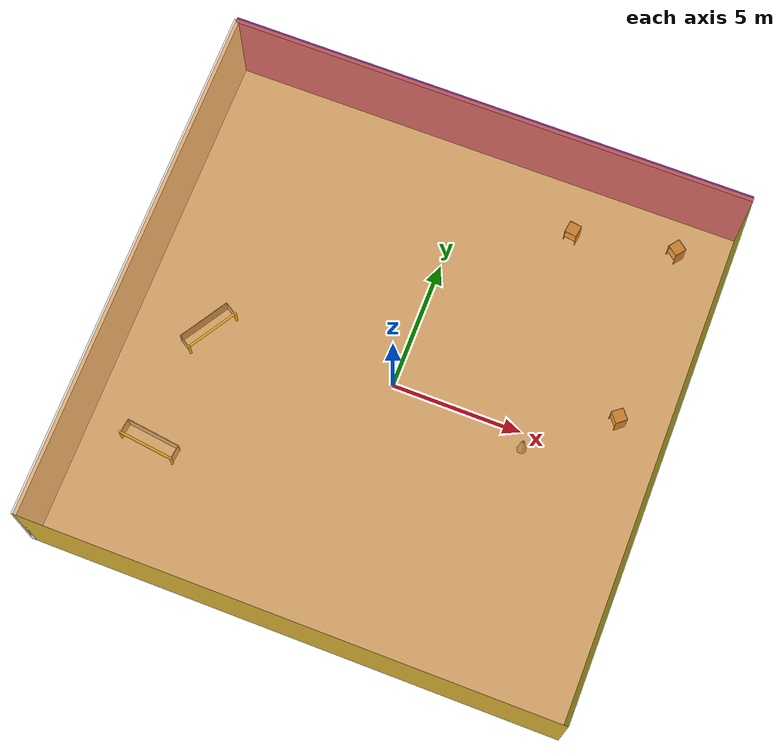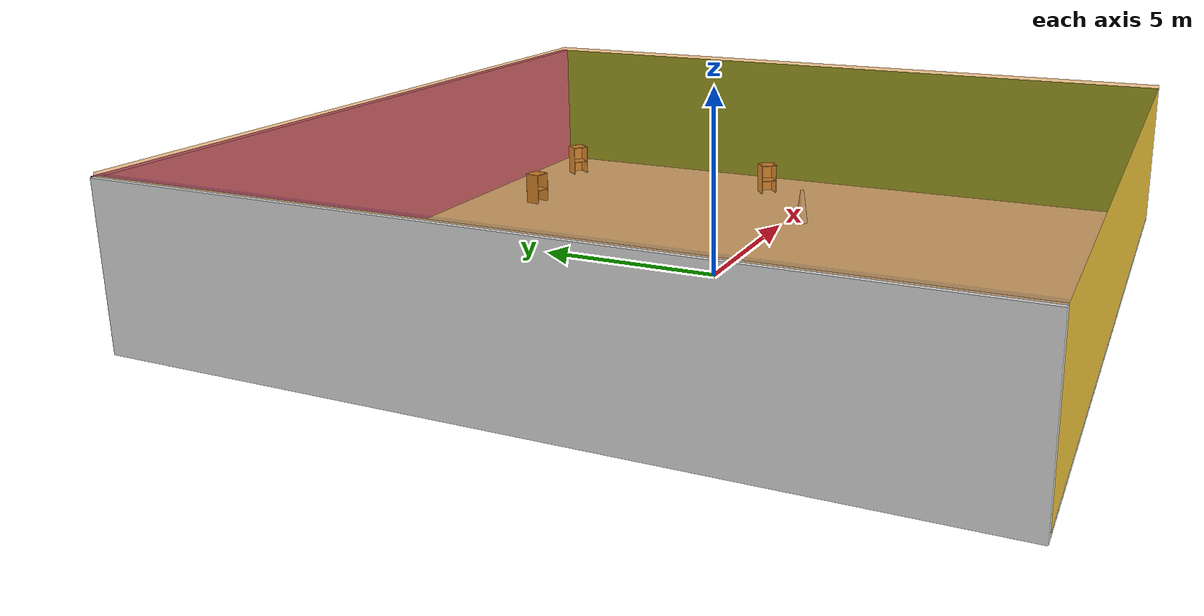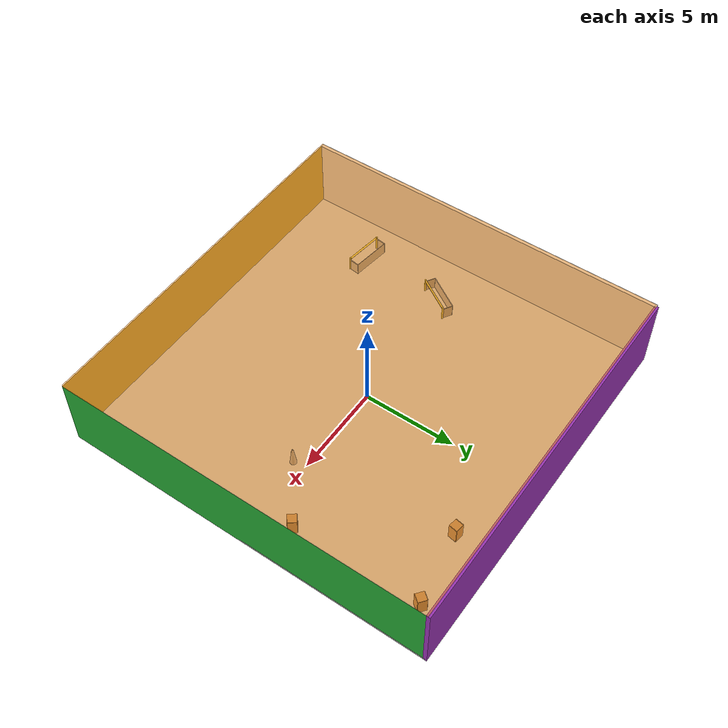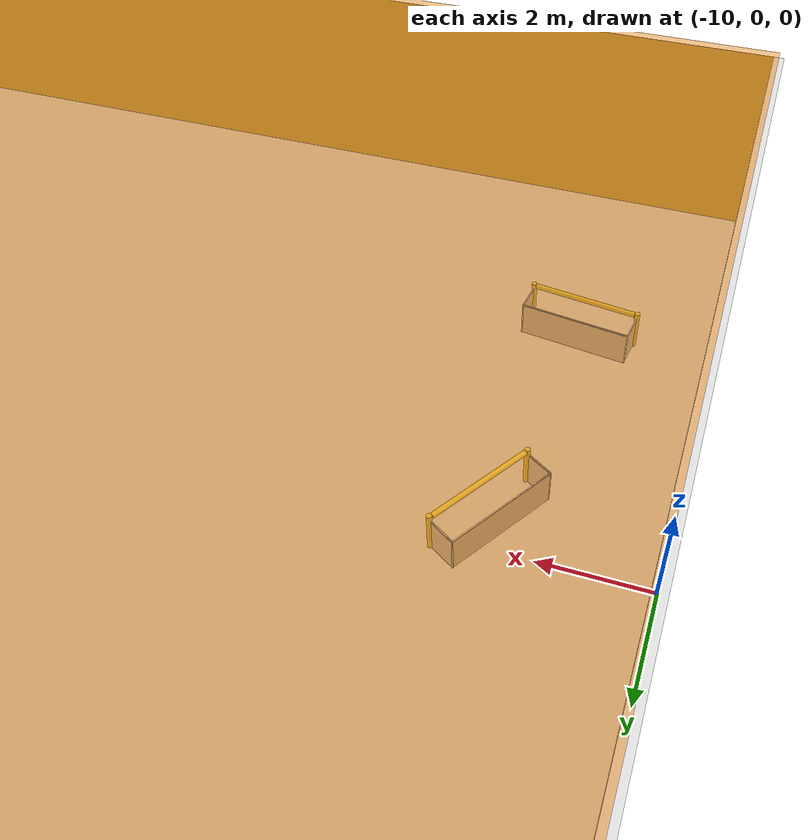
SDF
<sdf version="1.4">
 <world name="default">
  <physics type="ode">
   <max_step_size>0.001</max_step_size>
   <real_time_factor>1</real_time_factor>
   <real_time_update_rate>1000</real_time_update_rate>
   <gravity>0 0 -9.8</gravity>
  </physics>
  <scene><ambient>0.4 0.4 0.4 1</ambient><background>0.7 0.7 0.7 1</background><shadows>1</shadows></scene>
  <model name="Surrounding">
   <static>1</static>
   <link name="Ceiling">
    <collision name="Ceiling_Collision"><geometry><box><size>20 20 0.1</size></box></geometry></collision>
    <visual name="Ceiling_Visual">
     <geometry><box><size>20 20 0.1</size></box></geometry>
     <material>
      <script>
       <uri>file://media/materials/scripts/gazebo.material</uri>
       <name>Gazebo/OrangeTransparent</name>
      </script>
     </material>
    </visual>
    <pose>0 0 4.05 0 0 0</pose>
   </link>
   <link name="Wall_South">
    <collision name="Wall_South_Collision">
     <geometry><box><size>20 0 4</size></box></geometry>
     <pose>0 0 2 0 -0 0</pose>
    </collision>
    <visual name="Wall_South_Visual">
     <pose>0 0 2 0 -0 0</pose>
     <geometry><box><size>20 0 4</size></box></geometry>
     <material>
      <script><uri>file://media/materials/scripts/gazebo.material</uri><name>Gazebo/Gold</name></script>
     </material>
    </visual>
    <velocity_decay><linear>0</linear><angular>0</angular></velocity_decay>
    <pose>0 -10 0 0 -0 0</pose>
   </link>
   <link name="Wall_East">
    <collision name="Wall_21_Collision">
     <geometry><box><size>20 0 4</size></box></geometry>
     <pose>0 0 2 0 -0 0</pose>
    </collision>
    <visual name="Wall_21_Visual">
     <pose>0 0 2 0 -0 0</pose>
     <geometry><box><size>20 0 4</size></box></geometry>
     <material>
      <script><uri>file://media/materials/scripts/gazebo.material</uri><name>Gazebo/GreenGlow</name></script>
     </material>
    </visual>
    <velocity_decay><linear>0</linear><angular>0</angular></velocity_decay>
    <pose>10 0 0 0 -0 1.5708</pose>
   </link>
   <link name="Wall_North">
    <collision name="Wall_22_Collision">
     <geometry><box><size>20 0.2 4</size></box></geometry>
     <pose>0 0 2 0 -0 0</pose>
    </collision>
    <visual name="Wall_22_Visual">
     <pose>0 0 2 0 -0 0</pose>
     <geometry><box><size>20 0.2 4</size></box></geometry>
     <material>
      <script><uri>file://media/materials/scripts/gazebo.material</uri><name>Gazebo/PurpleGlow</name></script>
     </material>
    </visual>
    <velocity_decay><linear>0</linear><angular>0</angular></velocity_decay>
    <pose>0 10 0 0 -0 0</pose>
   </link>
   <link name="Wall_West">
    <collision name="Wall_23_Collision">
     <geometry><box><size>20 0.2 4</size></box></geometry>
     <pose>0 0 2 0 -0 0</pose>
    </collision>
    <visual name="Wall_23_Visual">
     <pose>0 0 2 0 -0 0</pose>
     <geometry><box><size>20 0.2 4</size></box></geometry>
     <material>
      <script><uri>file://media/materials/scripts/gazebo.material</uri><name>Gazebo/White</name></script>
     </material>
    </visual>
    <velocity_decay><linear>0</linear><angular>0</angular></velocity_decay>
    <pose>-10 0 0 0 0 -1.5708</pose>
   </link>
   <link name="Ground_link">
    <collision name="collision">
     <pose>0 0 .05 0 -0 0</pose>
     <geometry><box><size>20 20 0.1</size></box></geometry>
    </collision>
    <visual name="visual">
     <pose>0 0 .05 0 -0 0</pose>
     <geometry><box><size>20 20 0.1</size></box></geometry>
     <material>
      <script><uri>file://media/materials/scripts/gazebo.material</uri><name>Gazebo/CeilingTiled</name></script>
     </material>
    </visual>
   </link>
   <static>1</static>
  </model>
  <spherical_coordinates>
   <surface_model>EARTH_WGS84</surface_model>
   <latitude_deg>0</latitude_deg>
   <longitude_deg>0</longitude_deg>
   <elevation>0</elevation>
   <heading_deg>0</heading_deg>
  </spherical_coordinates>
  <light name="lightball_0" type="diffuse">
   <diffuse>0.8 0.8 0.8 1</diffuse>
   <specular>0.2 0.2 0.2 1</specular>
   <attenuation>
    <range>100</range>
    <constant>0.7</constant>
    <linear>0.01</linear>
    <quadratic>0.001</quadratic>
   </attenuation>
   <direction>-0.5 0.1 -0.9</direction>
   <pose>-0.971881900913 -5.03999347136 2.68511583324 0 0 0</pose>
  </light>
  <light name="lightball_1" type="diffuse">
   <diffuse>0.8 0.8 0.8 1</diffuse>
   <specular>0.2 0.2 0.2 1</specular>
   <attenuation>
    <range>100</range>
    <constant>0.7</constant>
    <linear>0.01</linear>
    <quadratic>0.001</quadratic>
   </attenuation>
   <direction>-0.5 0.1 -0.9</direction>
   <pose>2.6576067477 5.5924045881 2.17132632998 0 0 0</pose>
  </light>
  <light name="lightball_2" type="diffuse">
   <diffuse>0.8 0.8 0.8 1</diffuse>
   <specular>0.2 0.2 0.2 1</specular>
   <attenuation>
    <range>100</range>
    <constant>0.7</constant>
    <linear>0.01</linear>
    <quadratic>0.001</quadratic>
   </attenuation>
   <direction>-0.5 0.1 -0.9</direction>
   <pose>2.77354670179 2.02635423821 0.627602387681 0 0 0</pose>
  </light>
  <light name="lightball_3" type="diffuse">
   <diffuse>0.8 0.8 0.8 1</diffuse>
   <specular>0.2 0.2 0.2 1</specular>
   <attenuation>
    <range>100</range>
    <constant>0.7</constant>
    <linear>0.01</linear>
    <quadratic>0.001</quadratic>
   </attenuation>
   <direction>-0.5 0.1 -0.9</direction>
   <pose>-1.39184254077 -5.06607758545 2.73511131327 0 0 0</pose>
  </light>
  <light name="lightball_4" type="diffuse">
   <diffuse>0.8 0.8 0.8 1</diffuse>
   <specular>0.2 0.2 0.2 1</specular>
   <attenuation>
    <range>100</range>
    <constant>0.7</constant>
    <linear>0.01</linear>
    <quadratic>0.001</quadratic>
   </attenuation>
   <direction>-0.5 0.1 -0.9</direction>
   <pose>9.19533148344 -3.82746874817 1.94579705425 0 0 0</pose>
  </light>
  <light name="lightball_5" type="diffuse">
   <diffuse>0.8 0.8 0.8 1</diffuse>
   <specular>0.2 0.2 0.2 1</specular>
   <attenuation>
    <range>100</range>
    <constant>0.7</constant>
    <linear>0.01</linear>
    <quadratic>0.001</quadratic>
   </attenuation>
   <direction>-0.5 0.1 -0.9</direction>
   <pose>8.36536980782 -9.48534313114 1.61509472549 0 0 0</pose>
  </light>
  <light name="lightball_6" type="diffuse">
   <diffuse>0.8 0.8 0.8 1</diffuse>
   <specular>0.2 0.2 0.2 1</specular>
   <attenuation>
    <range>100</range>
    <constant>0.7</constant>
    <linear>0.01</linear>
    <quadratic>0.001</quadratic>
   </attenuation>
   <direction>-0.5 0.1 -0.9</direction>
   <pose>1.57473999129 5.74411624988 0.560582084568 0 0 0</pose>
  </light>
  <light name="lightball_7" type="diffuse">
   <diffuse>0.8 0.8 0.8 1</diffuse>
   <specular>0.2 0.2 0.2 1</specular>
   <attenuation>
    <range>100</range>
    <constant>0.7</constant>
    <linear>0.01</linear>
    <quadratic>0.001</quadratic>
   </attenuation>
   <direction>-0.5 0.1 -0.9</direction>
   <pose>7.85248026893 -5.23346286447 3.87449298741 0 0 0</pose>
  </light>
  <light name="lightball_8" type="diffuse">
   <diffuse>0.8 0.8 0.8 1</diffuse>
   <specular>0.2 0.2 0.2 1</specular>
   <attenuation>
    <range>100</range>
    <constant>0.7</constant>
    <linear>0.01</linear>
    <quadratic>0.001</quadratic>
   </attenuation>
   <direction>-0.5 0.1 -0.9</direction>
   <pose>9.76749112191 -8.41317783552 2.05782780626 0 0 0</pose>
  </light>
  <light name="lightball_9" type="diffuse">
   <diffuse>0.8 0.8 0.8 1</diffuse>
   <specular>0.2 0.2 0.2 1</specular>
   <attenuation>
    <range>100</range>
    <constant>0.7</constant>
    <linear>0.01</linear>
    <quadratic>0.001</quadratic>
   </attenuation>
   <direction>-0.5 0.1 -0.9</direction>
   <pose>-9.7639243297 3.41290561233 1.7102360478 0 0 0</pose>
  </light>
  <include>
   <uri>model://robocup_3Dsim_goal</uri>
   <pose>-7.47778473885 -5.52361802015 0 0 0 1.44460344586</pose>
  </include>
  <include>
   <uri>model://robocup_3Dsim_goal</uri>
   <pose>-6.89174925489 -0.616965852944 0 0 0 2.58965102672</pose>
  </include>
  <include>
   <uri>model://construction_cone</uri>
   <pose>5.24474085972 -0.604165135028 0 0 0 2.55376416708</pose>
  </include>
  <include><uri>model://cabinet</uri><pose>4.20821600027 7.82673204298 0 0 0 1.41702466868</pose></include>
  <include><uri>model://cabinet</uri><pose>8.15956102425 1.58326379414 0 0 0 0.675532300678</pose></include>
  <include><uri>model://cabinet</uri><pose>8.07441984785 8.50265505884 0 0 0 0.91370140625</pose></include>
 </world>
</sdf>

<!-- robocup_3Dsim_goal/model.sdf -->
<sdf version="1.5">
  <model name="robocup_3d_goal">
    <static>true</static>
    <link name="left_post">
      <pose>0 1.05 0.45 0 0 0</pose>
      <collision name="collision">
        <geometry>
          <cylinder>
            <radius>0.05</radius>
            <length>0.9</length>
          </cylinder>
        </geometry>
      </collision>
      <visual name="visual">
        <geometry>
          <cylinder>
            <radius>0.05</radius>
            <length>0.9</length>
          </cylinder>
        </geometry>
        <material>
          <script>
            <uri>file://media/materials/scripts/gazebo.material</uri>
            <name>Gazebo/ZincYellow</name>
          </script>
        </material>
      </visual>
    </link>
    <link name="left_support_horiz_lower">
      <pose>0.30 1.05 0.01 0 0 0</pose>
      <collision name="collision">
        <geometry>
          <box>
            <size>0.50 0.02 0.02</size>
          </box>
        </geometry>
      </collision>
      <visual name="visual">
        <geometry>
          <box>
            <size>0.50 0.02 0.02</size>
          </box>
        </geometry>
        <material>
          <script>
            <uri>file://media/materials/scripts/gazebo.material</uri>
            <name>Gazebo/White</name>
          </script>
        </material>
      </visual>
    </link>
    <link name="left_support_horiz_upper">
      <pose>0.30 1.05 0.79 0 0 0</pose>
      <collision name="collision">
        <geometry>
          <box>
            <size>0.50 0.02 0.02</size>
          </box>
        </geometry>
      </collision>
      <visual name="visual">
        <geometry>
          <box>
            <size>0.50 0.02 0.02</size>
          </box>
        </geometry>
        <material>
          <script>
            <uri>file://media/materials/scripts/gazebo.material</uri>
            <name>Gazebo/White</name>
          </script>
        </material>
      </visual>
    </link>
    <link name="left_support_vertical">
      <pose>0.56 1.05 0.4 0 1.5708 0</pose>
      <collision name="collision">
        <geometry>
          <box>
            <size>0.80 0.02 0.02</size>
          </box>
        </geometry>
      </collision>
      <visual name="visual">
        <geometry>
          <box>
            <size>0.80 0.02 0.02</size>
          </box>
        </geometry>
        <material>
          <script>
            <uri>file://media/materials/scripts/gazebo.material</uri>
            <name>Gazebo/White</name>
          </script>
        </material>
      </visual>
    </link>
    <link name="right_support_horiz_lower">
      <pose>0.30 -1.05 0.01 0 0 0</pose>
      <collision name="collision">
        <geometry>
          <box>
            <size>0.50 0.02 0.02</size>
          </box>
        </geometry>
      </collision>
      <visual name="visual">
        <geometry>
          <box>
            <size>0.50 0.02 0.02</size>
          </box>
        </geometry>
        <material>
          <script>
            <uri>file://media/materials/scripts/gazebo.material</uri>
            <name>Gazebo/White</name>
          </script>
        </material>
      </visual>
    </link>
    <link name="right_support_horiz_upper">
      <pose>0.30 -1.05 0.79 0 0 0</pose>
      <collision name="collision">
        <geometry>
          <box>
            <size>0.50 0.02 0.02</size>
          </box>
        </geometry>
      </collision>
      <visual name="visual">
        <geometry>
          <box>
            <size>0.50 0.02 0.02</size>
          </box>
        </geometry>
        <material>
          <script>
            <uri>file://media/materials/scripts/gazebo.material</uri>
            <name>Gazebo/White</name>
          </script>
        </material>
      </visual>
    </link>
    <link name="right_support_vertical">
      <pose>0.56 -1.05 0.4 0 1.5708 0</pose>
      <collision name="collision">
        <geometry>
          <box>
            <size>0.80 0.02 0.02</size>
          </box>
        </geometry>
      </collision>
      <visual name="visual">
        <geometry>
          <box>
            <size>0.80 0.02 0.02</size>
          </box>
        </geometry>
        <material>
          <script>
            <uri>file://media/materials/scripts/gazebo.material</uri>
            <name>Gazebo/White</name>
          </script>
        </material>
      </visual>
    </link>
    <link name="center_support_horiz_lower">
      <pose>0.56 0 0.01 0 1.5708 0</pose>
      <collision name="collision">
        <geometry>
          <box>
            <size>0.02 2.08 0.02</size>
          </box>
        </geometry>
      </collision>
      <visual name="visual">
        <geometry>
          <box>
            <size>0.02 2.08 0.02</size>
          </box>
        </geometry>
        <material>
          <script>
            <uri>file://media/materials/scripts/gazebo.material</uri>
            <name>Gazebo/White</name>
          </script>
        </material>
      </visual>
    </link>
    <link name="center_support_horiz_upper">
      <pose>0.56 0 0.79 0 1.5708 0</pose>
      <collision name="collision">
        <geometry>
          <box>
            <size>0.02 2.08 0.02</size>
          </box>
        </geometry>
      </collision>
      <visual name="visual">
        <geometry>
          <box>
            <size>0.02 2.08 0.02</size>
          </box>
        </geometry>
        <material>
          <script>
            <uri>file://media/materials/scripts/gazebo.material</uri>
            <name>Gazebo/White</name>
          </script>
        </material>
      </visual>
    </link>
    <link name="right_post">
      <pose>0 -1.05 0.45 0 0 0</pose>
      <collision name="collision">
        <geometry>
          <cylinder>
            <radius>0.05</radius>
            <length>0.9</length>
          </cylinder>
        </geometry>
      </collision>
      <visual name="visual">
        <geometry>
          <cylinder>
            <radius>0.05</radius>
            <length>0.9</length>
          </cylinder>
        </geometry>
        <material>
          <script>
            <uri>file://media/materials/scripts/gazebo.material</uri>
            <name>Gazebo/ZincYellow</name>
          </script>
        </material>
      </visual>
    </link>
    <link name="crossbar">
      <pose>0 0 0.85 1.57 1.57 0</pose>
      <collision name="collision">
        <geometry>
          <cylinder>
            <radius>0.05</radius>
            <length>2.0</length>
          </cylinder>
        </geometry>
      </collision>
      <visual name="visual">
        <geometry>
          <cylinder>
            <radius>0.05</radius>
            <length>2.0</length>
          </cylinder>
        </geometry>
        <material>
          <script>
            <uri>file://media/materials/scripts/gazebo.material</uri>
            <name>Gazebo/ZincYellow</name>
          </script>
        </material>
      </visual>
    </link>
    <link name="center_net">
      <pose>0.56 0 0.40 0 0 0</pose>
      <collision name="collision">
        <geometry>
          <box>
            <size>0.01 2.1 0.80</size>
          </box>
        </geometry>
      </collision>
      <visual name="visual">
        <geometry>
          <box>
            <size>0.01 2.1 0.80</size>
          </box>
        </geometry>
        <material>
          <script>
            <uri>model://../model_source/models/robocup09_spl_field/materials/scripts/</uri>
            <uri>model://../model_source/models/robocup09_spl_field/materials/textures/</uri>
            <name>RoboCup/Net</name>
          </script>
        </material>
      </visual>
    </link>
    <link name="left_net">
      <pose>0.30 1.05 0.40 0 0 0</pose>
      <collision name="collision">
        <geometry>
          <box>
            <size>0.50 0.01 0.76</size>
          </box>
        </geometry>
      </collision>
      <visual name="visual">
        <geometry>
          <box>
            <size>0.50 0.01 0.76</size>
          </box>
        </geometry>
        <material>
          <script>
            <uri>model://../model_source/models/robocup09_spl_field/materials/scripts/</uri>
            <uri>model://../model_source/models/robocup09_spl_field/materials/textures/</uri>
            <name>RoboCup/Net</name>
          </script>
        </material>
      </visual>
    </link>
    <link name="right_net">
      <pose>0.30 -1.05 0.40 0 0 0</pose>
      <collision name="collision">
        <geometry>
          <box>
            <size>0.50 0.01 0.76</size>
          </box>
        </geometry>
      </collision>
      <visual name="visual">
        <geometry>
          <box>
            <size>0.50 0.01 0.76</size>
          </box>
        </geometry>
        <material>
          <script>
            <uri>model://../model_source/models/robocup09_spl_field/materials/scripts/</uri>
            <uri>model://../model_source/models/robocup09_spl_field/materials/textures/</uri>
            <name>RoboCup/Net</name>
          </script>
        </material>
      </visual>
    </link>
  </model>
</sdf>

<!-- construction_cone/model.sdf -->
<sdf version="1.5">
  <model name="Construction Cone">
    <link name="link">
      <collision name="collision">
        <geometry>
          <mesh>
            <scale>10 10 10</scale>
            <uri>file://isr-testbed/construction_cone/meshes/construction_cone.dae</uri>
          </mesh>
        </geometry>
      </collision>
      <visual name="visual">
        <geometry>
          <mesh>
            <scale>10 10 10</scale>
            <uri>file://isr-testbed/construction_cone/meshes/construction_cone.dae</uri>
          </mesh>
        </geometry>
      </visual>
    </link>
  </model>
</sdf>

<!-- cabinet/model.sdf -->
<sdf version="1.5">
  <model name="cabinet">
    <static>true</static>
    <link name="cabinet_bottom_plate">
      <inertial>
        <pose>0 0 -1 0 0 0</pose>
        <inertia>
          <ixx>2.050000</ixx>
          <ixy>0</ixy>
          <ixz>0</ixz>
          <iyy>2.050000</iyy>
          <iyz>0</iyz>
          <izz>2.050000</izz>
        </inertia>
        <mass>25.000000</mass>
      </inertial>
      <collision name="cabinet_bottom_plate_geom">
        <pose>0 0 0.010000 0 0 0</pose>
        <geometry>
          <box>
            <size>0.450000 0.450000 0.020000</size>
          </box>
        </geometry>
      </collision>
      <visual name="cabinet_bottom_plate_geom_visual">
        <pose>0 0 0.010000 0 0 0</pose>
        <geometry>
          <box>
            <size>0.450000 0.450000 0.020000</size>
          </box>
        </geometry>
        <material>
          <script>
            <uri>model://media/materials/scripts/gazebo.material</uri>
            <name>Gazebo/Wood</name>
          </script>
        </material>
      </visual>
      <collision name="cabinet_bottom_plate_geom_cabinet_back_plate">
        <pose>0.235000 0 0.510000 0 0 0</pose>
        <geometry>
          <box>
            <size>0.020000 0.450000 1.020000</size>
          </box>
        </geometry>
      </collision>
      <visual name="cabinet_bottom_plate_geom_cabinet_back_plate_visual">
        <pose>0.235000 0 0.510000 0 0 0</pose>
        <geometry>
          <box>
            <size>0.020000 0.450000 1.020000</size>
          </box>
        </geometry>
        <material>
          <script>
            <uri>model://media/materials/scripts/gazebo.material</uri>
            <name>Gazebo/Wood</name>
          </script>
        </material>
      </visual>
      <collision name="cabinet_bottom_plate_geom_cabinet_left_plate">
        <pose>0 0.235000 0.510000 0 0 0</pose>
        <geometry>
          <box>
            <size>0.450000 0.020000 1.020000</size>
          </box>
        </geometry>
      </collision>
      <visual name="cabinet_bottom_plate_geom_cabinet_left_plate_visual">
        <pose>0 0.235000 0.510000 0 0 0</pose>
        <geometry>
          <box>
            <size>0.450000 0.020000 1.020000</size>
          </box>
        </geometry>
        <material>
          <script>
            <uri>model://media/materials/scripts/gazebo.material</uri>
            <name>Gazebo/Wood</name>
          </script>
        </material>
      </visual>
      <collision name="cabinet_bottom_plate_geom_cabinet_middle_plate">
        <pose>0 0 0.510000 0 0 0</pose>
        <geometry>
          <box>
            <size>0.450000 0.450000 0.020000</size>
          </box>
        </geometry>
      </collision>
      <visual name="cabinet_bottom_plate_geom_cabinet_middle_plate_visual">
        <pose>0 0 0.510000 0 0 0</pose>
        <geometry>
          <box>
            <size>0.450000 0.450000 0.020000</size>
          </box>
        </geometry>
        <material>
          <script>
            <uri>model://media/materials/scripts/gazebo.material</uri>
            <name>Gazebo/Wood</name>
          </script>
        </material>
      </visual>
      <collision name="cabinet_bottom_plate_geom_cabinet_right_plate">
        <pose>0 -0.235000 0.510000 0 0 0</pose>
        <geometry>
          <box>
            <size>0.450000 0.020000 1.020000</size>
          </box>
        </geometry>
      </collision>
      <visual name="cabinet_bottom_plate_geom_cabinet_right_plate_visual">
        <pose>0 -0.235000 0.510000 0 0 0</pose>
        <geometry>
          <box>
            <size>0.450000 0.020000 1.020000</size>
          </box>
        </geometry>
        <material>
          <script>
            <uri>model://media/materials/scripts/gazebo.material</uri>
            <name>Gazebo/Wood</name>
          </script>
        </material>
      </visual>
      <collision name="cabinet_bottom_plate_geom_cabinet_top_plate">
        <pose>0 0 1.010000 0 0 0</pose>
        <geometry>
          <box>
            <size>0.450000 0.450000 0.020000</size>
          </box>
        </geometry>
      </collision>
      <visual name="cabinet_bottom_plate_geom_cabinet_top_plate_visual">
        <pose>0 0 1.010000 0 0 0</pose>
        <geometry>
          <box>
            <size>0.450000 0.450000 0.020000</size>
          </box>
        </geometry>
        <material>
          <script>
            <uri>model://media/materials/scripts/gazebo.material</uri>
            <name>Gazebo/Wood</name>
          </script>
        </material>
      </visual>
    </link>
  </model>
</sdf>
